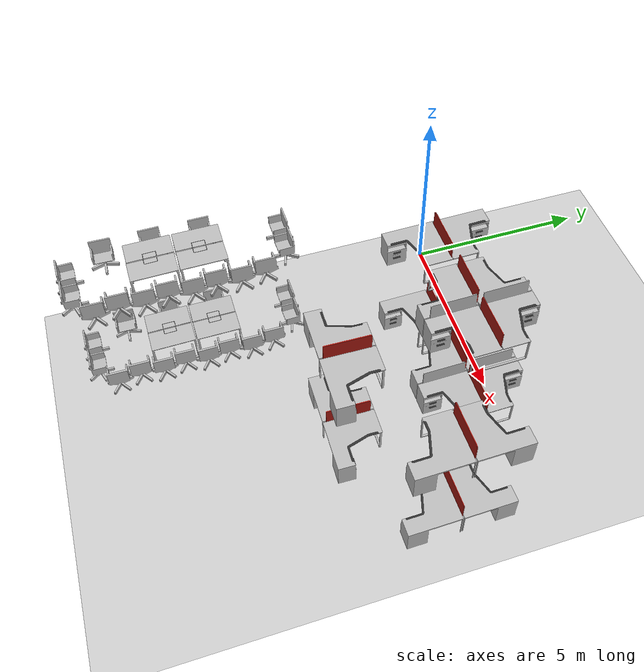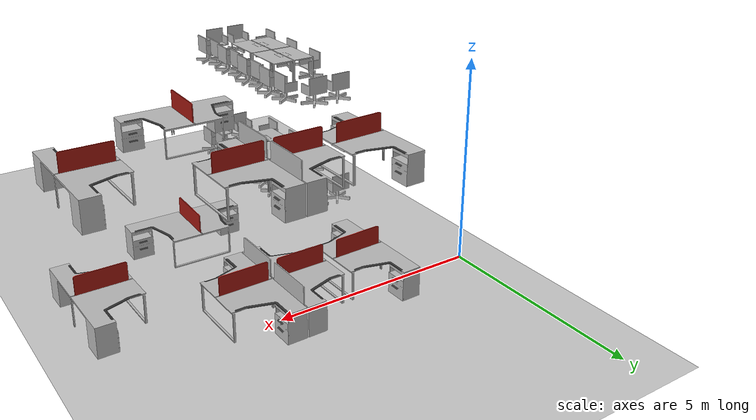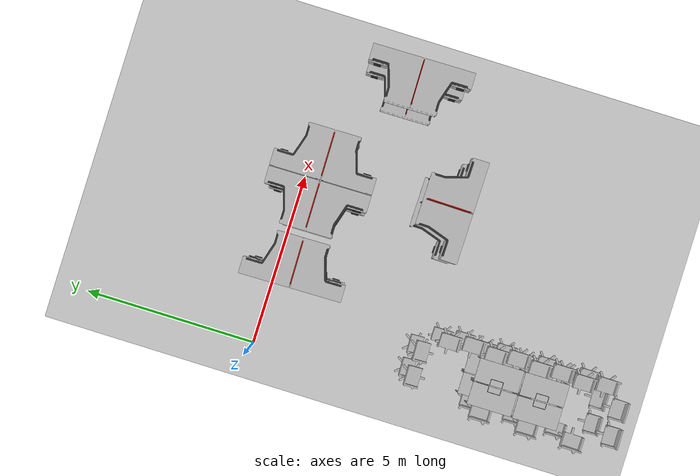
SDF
<sdf version="1.6">
 <world name="default">
  <model name="ground_plane">
   <static>1</static>
   <link name="link">
    <collision name="collision">
     <geometry><plane><normal>0 0 1</normal><size>100 100</size></plane></geometry>
     <surface><friction><ode><mu>100</mu><mu2>50</mu2></ode></friction></surface>
    </collision>
    <visual name="visual">
     <cast_shadows>0</cast_shadows>
     <geometry><plane><normal>0 0 1</normal><size>100 100</size></plane></geometry>
     <material>
      <script><uri>file://media/materials/scripts/gazebo.material</uri><name>Gazebo/Grey</name></script>
     </material>
    </visual>
   </link>
  </model>
  <include>
   <uri>model://rs_gazebo/models/ss_hq4/413_table</uri>
   <name>'413_table_1'</name>
   <pose>1.35826 -6.55524 0.415677 -1e-06 -6e-06 1.57798</pose>
  </include>
  <include>
   <uri>model://rs_gazebo/models/ss_hq4/413_table</uri>
   <name>'413_table_2'</name>
   <pose>0.711378 -7.8122 0.415681 1.2e-05 -6e-06 -1.55968</pose>
  </include>
  <include>
   <uri>model://rs_gazebo/models/ss_hq4/413_table</uri>
   <name>'413_table_3'</name>
   <pose>0.715416 -6.55909 0.41568 -3e-06 -0 -1.56994</pose>
  </include>
  <include>
   <uri>model://rs_gazebo/models/ss_hq4/413_table</uri>
   <name>'413_table_4'</name>
   <pose>1.35714 -7.80696 0.415681 1.2e-05 -6e-06 1.58535</pose>
  </include>
  <include>
   <uri>model://rs_gazebo/models/ss_hq4/413_meeting_chair</uri>
   <name>'413_meeting_chair_2'</name>
   <pose>0.187999 -6.40878 0.281792 -1e-06 -1e-06 1.56988</pose>
  </include>
  <include>
   <uri>model://rs_gazebo/models/ss_hq4/413_meeting_chair</uri>
   <name>'413_meeting_chair_4'</name>
   <pose>0.166702 -7.70382 0.281792 -0 -7e-06 1.57768</pose>
  </include>
  <include>
   <uri>model://rs_gazebo/models/ss_hq4/413_meeting_chair</uri>
   <name>'413_meeting_chair_4_clone_clone'</name>
   <pose>0.172639 -8.96147 0.281792 0 -0 1.55151</pose>
  </include>
  <include>
   <uri>model://rs_gazebo/models/ss_hq4/413_meeting_chair</uri>
   <name>'413_meeting_chair_4_clone_clone_1'</name>
   <pose>0.675891 -9.98419 0.281792 -1.2e-05 -1.9e-05 -3.12273</pose>
  </include>
  <include>
   <uri>model://rs_gazebo/models/ss_hq4/413_meeting_chair</uri>
   <name>'413_meeting_chair_4_clone_clone_2'</name>
   <pose>1.40384 -9.95187 0.281793 3e-06 2e-06 3.13307</pose>
  </include>
  <include>
   <uri>model://rs_gazebo/models/ss_hq4/413_meeting_chair</uri>
   <name>'413_meeting_chair_4_clone_clone_3'</name>
   <pose>0.638343 -4.35233 0.281792 -7e-06 2e-06 0.022867</pose>
  </include>
  <include>
   <uri>model://rs_gazebo/models/ss_hq4/413_meeting_chair</uri>
   <name>'413_meeting_chair_6'</name>
   <pose>1.87273 -5.0823 0.281792 0 0 -1.57166</pose>
  </include>
  <include>
   <uri>model://rs_gazebo/models/ss_hq4/413_meeting_chair</uri>
   <name>'413_meeting_chair_6_clone'</name>
   <pose>1.96064 -5.71851 0.281792 0 0 -1.57167</pose>
  </include>
  <include>
   <uri>model://rs_gazebo/models/ss_hq4/413_meeting_chair</uri>
   <name>'413_meeting_chair_6_clone_0'</name>
   <pose>1.8845 -6.35544 0.281793 3e-06 8e-06 -1.5717</pose>
  </include>
  <include>
   <uri>model://rs_gazebo/models/ss_hq4/413_meeting_chair</uri>
   <name>'413_meeting_chair_6_clone_1'</name>
   <pose>1.97354 -6.95747 0.281793 2e-06 -2e-06 -1.5716</pose>
  </include>
  <include>
   <uri>model://rs_gazebo/models/ss_hq4/413_meeting_chair</uri>
   <name>'413_meeting_chair_6_clone_2'</name>
   <pose>1.87867 -7.58068 0.281792 -4e-06 -5e-06 -1.57149</pose>
  </include>
  <include>
   <uri>model://rs_gazebo/models/ss_hq4/413_meeting_chair</uri>
   <name>'413_meeting_chair_6_clone_3'</name>
   <pose>1.97177 -8.1842 0.281792 -1e-06 -1e-06 -1.57159</pose>
  </include>
  <include>
   <uri>model://rs_gazebo/models/ss_hq4/413_meeting_chair</uri>
   <name>'413_meeting_chair_6_clone_4'</name>
   <pose>1.88943 -8.8136 0.281792 -1e-06 -0 -1.57177</pose>
  </include>
  <include>
   <uri>model://rs_gazebo/models/ss_hq4/413_meeting_chair</uri>
   <name>'413_meeting_chair_6_clone_5'</name>
   <pose>2.00014 -9.42261 0.281789 7e-06 -5e-06 -1.57182</pose>
  </include>
  <include>
   <uri>model://rs_gazebo/models/ss_hq4/413_meeting_chair</uri>
   <name>'413_meeting_chair_7'</name>
   <pose>1.33346 -4.37606 0.281793 4e-06 8e-06 0.034098</pose>
  </include>
  <include>
   <uri>model://rs_gazebo/models/ss_hq4/414_quartet_table</uri>
   <name>414_quartet_table'</name>
   <pose>4.88042 -0.524938 0.442357 0 0 -1.5605</pose>
  </include>
  <include>
   <uri>model://rs_gazebo/models/ss_hq4/414_double_table</uri>
   <name>'''''414_double_table_clone_0'''_clone''</name>
   <pose>5.23967 -3.95998 0.440053 0.010784 -0 3.12738</pose>
  </include>
  <include>
   <uri>model://rs_gazebo/models/ss_hq4/414_double_table</uri>
   <name>'''''414_double_table_clone_1'''_clone''</name>
   <pose>2.61267 -0.573744 0.440047 0.010772 -6e-06 1.58752</pose>
  </include>
  <include>
   <uri>model://rs_gazebo/models/ss_hq4/414_double_table</uri>
   <name>'''''414_double_table_clone_2'''''</name>
   <pose>8.09862 -2.21125 0.440049 0.010769 5e-06 -1.55937</pose>
  </include>
  <include>
   <uri>model://rs_gazebo/models/ss_hq4/413_table</uri>
   <name>'413_table_1_4'</name>
   <pose>1.35714 -6.55909 3.315678 -1e-06 -6e-06 1.57798</pose>
  </include>
  <include>
   <uri>model://rs_gazebo/models/ss_hq4/413_table</uri>
   <name>'413_table_2_4'</name>
   <pose>0.711378 -7.8122 3.315678 1.2e-05 -6e-06 -1.55968</pose>
  </include>
  <include>
   <uri>model://rs_gazebo/models/ss_hq4/413_table</uri>
   <name>'413_table_3_4'</name>
   <pose>0.711378 -6.55909 3.315678 -3e-06 -0 -1.56994</pose>
  </include>
  <include>
   <uri>model://rs_gazebo/models/ss_hq4/413_table</uri>
   <name>'413_table_4_4'</name>
   <pose>1.35714 -7.8122 3.315678 1.2e-05 -6e-06 1.58535</pose>
  </include>
  <include>
   <uri>model://rs_gazebo/models/ss_hq4/413_meeting_chair</uri>
   <name>'413_meeting_chair_2_4'</name>
   <pose>0.187999 -6.40878 3.181792 -1e-06 -1e-06 1.56988</pose>
  </include>
  <include>
   <uri>model://rs_gazebo/models/ss_hq4/413_meeting_chair</uri>
   <name>'413_meeting_chair_4_4'</name>
   <pose>0.166702 -7.70382 3.181792 -0 -7e-06 1.57768</pose>
  </include>
  <include>
   <uri>model://rs_gazebo/models/ss_hq4/413_meeting_chair</uri>
   <name>'413_meeting_chair_4_clone_clone_4'</name>
   <pose>0.172639 -8.96147 3.181792 0 -0 1.55151</pose>
  </include>
  <include>
   <uri>model://rs_gazebo/models/ss_hq4/413_meeting_chair</uri>
   <name>'413_meeting_chair_4_clone_clone_1_4'</name>
   <pose>0.675891 -9.98419 3.181792 -1.2e-05 -1.9e-05 -3.12273</pose>
  </include>
  <include>
   <uri>model://rs_gazebo/models/ss_hq4/413_meeting_chair</uri>
   <name>'413_meeting_chair_4_clone_clone_2_4'</name>
   <pose>1.40384 -9.95187 3.181793 3e-06 2e-06 3.13307</pose>
  </include>
  <include>
   <uri>model://rs_gazebo/models/ss_hq4/413_meeting_chair</uri>
   <name>'413_meeting_chair_4_clone_clone_3_4'</name>
   <pose>0.638343 -4.35233 3.181792 -7e-06 2e-06 0.022867</pose>
  </include>
  <include>
   <uri>model://rs_gazebo/models/ss_hq4/413_meeting_chair</uri>
   <name>'413_meeting_chair_6_4'</name>
   <pose>1.87273 -5.0823 3.181792 0 0 -1.57166</pose>
  </include>
  <include>
   <uri>model://rs_gazebo/models/ss_hq4/413_meeting_chair</uri>
   <name>'413_meeting_chair_6_clone_4'</name>
   <pose>1.96064 -5.71851 3.181792 0 0 -1.57167</pose>
  </include>
  <include>
   <uri>model://rs_gazebo/models/ss_hq4/413_meeting_chair</uri>
   <name>'413_meeting_chair_6_clone_0_4'</name>
   <pose>1.8845 -6.35544 3.181793 3e-06 8e-06 -1.5717</pose>
  </include>
  <include>
   <uri>model://rs_gazebo/models/ss_hq4/413_meeting_chair</uri>
   <name>'413_meeting_chair_6_clone_1_4'</name>
   <pose>1.97354 -6.95747 3.181793 2e-06 -2e-06 -1.5716</pose>
  </include>
  <include>
   <uri>model://rs_gazebo/models/ss_hq4/413_meeting_chair</uri>
   <name>'413_meeting_chair_6_clone_2_4'</name>
   <pose>1.87867 -7.58068 3.181792 -4e-06 -5e-06 -1.57149</pose>
  </include>
  <include>
   <uri>model://rs_gazebo/models/ss_hq4/413_meeting_chair</uri>
   <name>'413_meeting_chair_6_clone_3_4'</name>
   <pose>1.97177 -8.1842 3.181792 -1e-06 -1e-06 -1.57159</pose>
  </include>
  <include>
   <uri>model://rs_gazebo/models/ss_hq4/413_meeting_chair</uri>
   <name>'413_meeting_chair_6_clone_4_4'</name>
   <pose>1.88943 -8.8136 3.181792 -1e-06 -0 -1.57177</pose>
  </include>
  <include>
   <uri>model://rs_gazebo/models/ss_hq4/413_meeting_chair</uri>
   <name>'413_meeting_chair_6_clone_5_4'</name>
   <pose>2.00014 -9.42261 3.181789 7e-06 -5e-06 -1.57182</pose>
  </include>
  <include>
   <uri>model://rs_gazebo/models/ss_hq4/413_meeting_chair</uri>
   <name>'413_meeting_chair_7_4'</name>
   <pose>1.33346 -4.37606 3.181793 4e-06 8e-06 0.034098</pose>
  </include>
  <include>
   <uri>model://rs_gazebo/models/ss_hq4/414_quartet_table</uri>
   <name>414_quartet_table_4'</name>
   <pose>4.88042 -0.524938 3.242357 0 0 -1.5605</pose>
  </include>
  <include>
   <uri>model://rs_gazebo/models/ss_hq4/414_double_table</uri>
   <name>'''''414_double_table_clone_0_4'''_clone''</name>
   <pose>5.23967 -3.95998 3.240053 0.010784 -0 3.12738</pose>
  </include>
  <include>
   <uri>model://rs_gazebo/models/ss_hq4/414_double_table</uri>
   <name>'''''414_double_table_clone_1_4'''_clone''</name>
   <pose>2.61267 -0.573744 3.240047 0.010772 -6e-06 1.58752</pose>
  </include>
  <include>
   <uri>model://rs_gazebo/models/ss_hq4/414_double_table</uri>
   <name>'''''414_double_table_clone_2_4'''''</name>
   <pose>8.09862 -2.21125 3.240049 0.010769 5e-06 -1.55937</pose>
  </include>
 </world>
</sdf>
